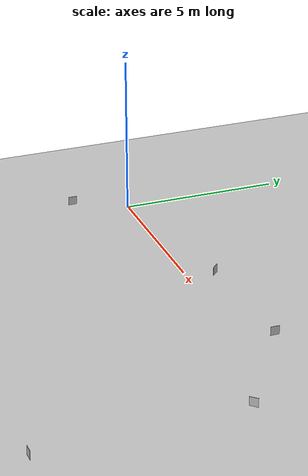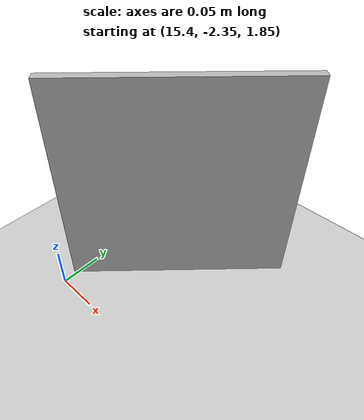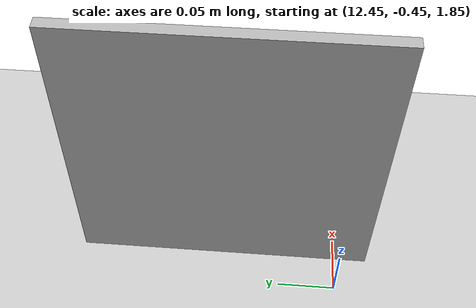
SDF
<sdf version="1.5">
 <world name="default">
  <scene><ambient>1.0 1.0 1.0 1.0</ambient><shadows>0</shadows></scene>
  <include><uri>model://sun</uri></include>
  <include><uri>model://ground_plane</uri></include>
  <include><pose>2.97 -2.8 2.0 0 1.57 0</pose><uri>model://aruco_1</uri></include>
  <include><pose>8.72 -0.5 2.0 0 1.57 0.785</pose><uri>model://aruco_2</uri></include>
  <include><pose>12.47 -0.35 2.0 0 1.57 0</pose><uri>model://aruco_3</uri></include>
  <include><pose>15.50 -2.25 2.0 0 1.57 -0.785</pose><uri>model://aruco_4</uri></include>
  <include><pose>15.65 -7.97 2.0 0 1.57 -1.57</pose><uri>model://aruco_5</uri></include>
 </world>
</sdf>

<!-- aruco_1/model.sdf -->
<sdf version="1.5">
    <model name="aruco_1">
        <static>true</static>
        <link name="link_aruco">
            <pose>0 0 0 0 0 0</pose>
            <collision name="collision">
                <geometry>
                    <box>
                        <size>.25 .25 .01</size>
                    </box>
                </geometry>
                <surface>
                    <friction>
                        <ode>
                            <mu>1</mu>
                            <mu2>1</mu2>
                        </ode>
                    </friction>
                </surface>
            </collision>
            <visual name="visual">
                <geometry>
                    <box>
                        <size>.25 .25 .01</size>
                    </box>
                </geometry>
                <material>
                    <script>
                        <uri>model://aruco_1/materials/scripts/aruco.material</uri>
                        <name>aruco/aruco_1</name>
                    </script>
                </material>
            </visual>
        </link>
    </model>
</sdf>

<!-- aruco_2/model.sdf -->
<sdf version="1.5">
    <model name="aruco_2">
        <static>true</static>
        <link name="link_aruco">
            <pose>0 0 0 0 0 0</pose>
            <collision name="collision">
                <geometry>
                    <box>
                        <size>.25 .25 .01</size>
                    </box>
                </geometry>
                <surface>
                    <friction>
                        <ode>
                            <mu>1</mu>
                            <mu2>1</mu2>
                        </ode>
                    </friction>
                </surface>
            </collision>
            <visual name="visual">
                <geometry>
                    <box>
                        <size>.25 .25 .01</size>
                    </box>
                </geometry>
                <material>
                    <script>
                        <uri>model://aruco_2/materials/scripts/aruco.material</uri>
                        <name>aruco/aruco_2</name>
                    </script>
                </material>
            </visual>
        </link>
    </model>
</sdf>

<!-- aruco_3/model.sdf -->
<sdf version="1.5">
    <model name="aruco_3">
        <static>true</static>
        <link name="link_aruco">
            <pose>0 0 0 0 0 0</pose>
            <collision name="collision">
                <geometry>
                    <box>
                        <size>.25 .25 .01</size>
                    </box>
                </geometry>
                <surface>
                    <friction>
                        <ode>
                            <mu>1</mu>
                            <mu2>1</mu2>
                        </ode>
                    </friction>
                </surface>
            </collision>
            <visual name="visual">
                <geometry>
                    <box>
                        <size>.25 .25 .01</size>
                    </box>
                </geometry>
                <material>
                    <script>
                        <uri>model://aruco_3/materials/scripts/aruco.material</uri>
                        <name>aruco/aruco_3</name>
                    </script>
                </material>
            </visual>
        </link>
    </model>
</sdf>

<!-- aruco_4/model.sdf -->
<sdf version="1.5">
    <model name="aruco_4">
        <static>true</static>
        <link name="link_aruco">
            <pose>0 0 0 0 0 0</pose>
            <collision name="collision">
                <geometry>
                    <box>
                        <size>.25 .25 .01</size>
                    </box>
                </geometry>
                <surface>
                    <friction>
                        <ode>
                            <mu>1</mu>
                            <mu2>1</mu2>
                        </ode>
                    </friction>
                </surface>
            </collision>
            <visual name="visual">
                <geometry>
                    <box>
                        <size>.25 .25 .01</size>
                    </box>
                </geometry>
                <material>
                    <script>
                        <uri>model://aruco_4/materials/scripts/aruco.material</uri>
                        <name>aruco/aruco_4</name>
                    </script>
                </material>
            </visual>
        </link>
    </model>
</sdf>

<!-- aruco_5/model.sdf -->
<sdf version="1.5">
    <model name="aruco_5">
        <static>true</static>
        <link name="link_aruco">
            <pose>0 0 0 0 0 0</pose>
            <collision name="collision">
                <geometry>
                    <box>
                        <size>.25 .25 .01</size>
                    </box>
                </geometry>
                <surface>
                    <friction>
                        <ode>
                            <mu>1</mu>
                            <mu2>1</mu2>
                        </ode>
                    </friction>
                </surface>
            </collision>
            <visual name="visual">
                <geometry>
                    <box>
                        <size>.25 .25 .01</size>
                    </box>
                </geometry>
                <material>
                    <script>
                        <uri>model://aruco_5/materials/scripts/aruco.material</uri>
                        <name>aruco/aruco_5</name>
                    </script>
                </material>
            </visual>
        </link>
    </model>
</sdf>
